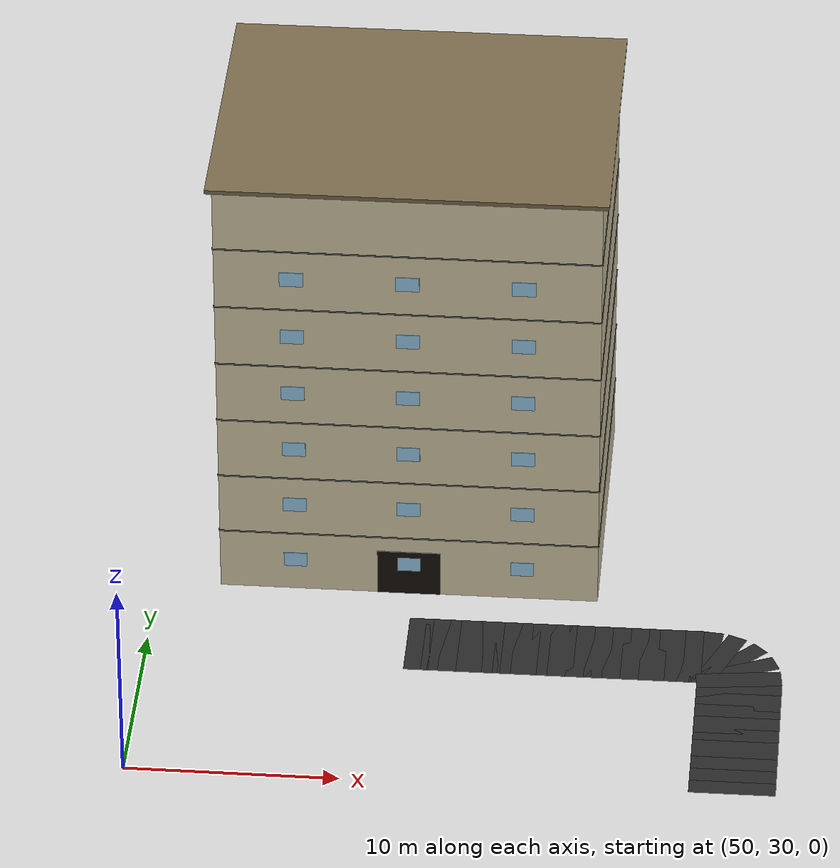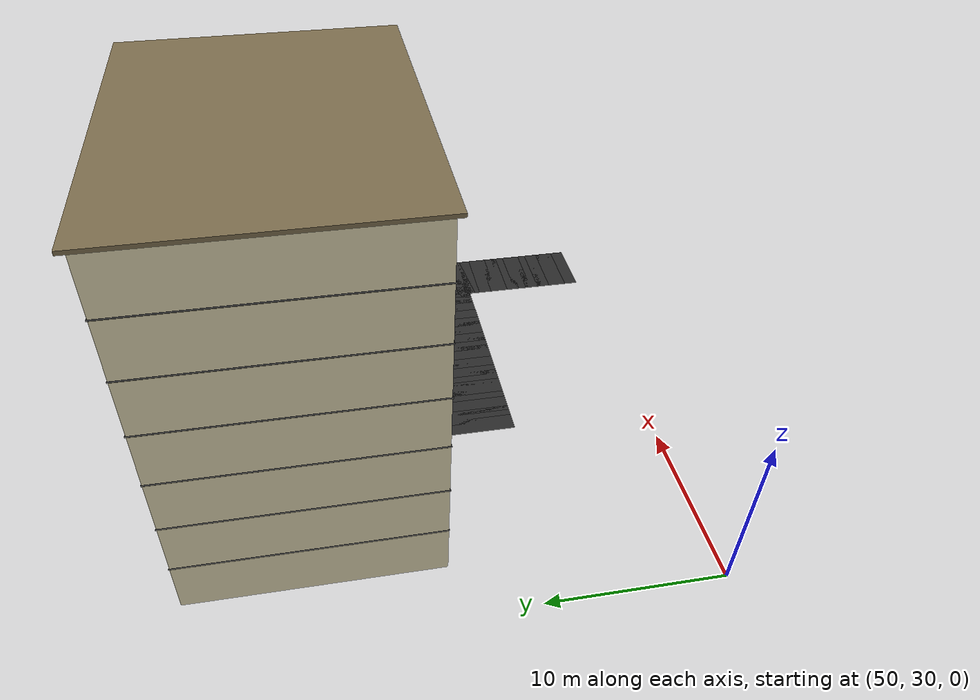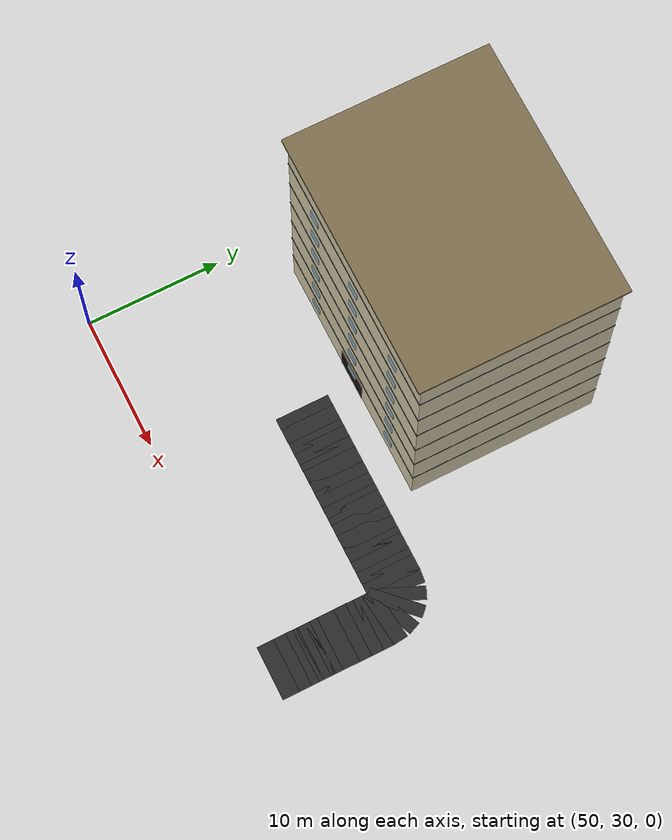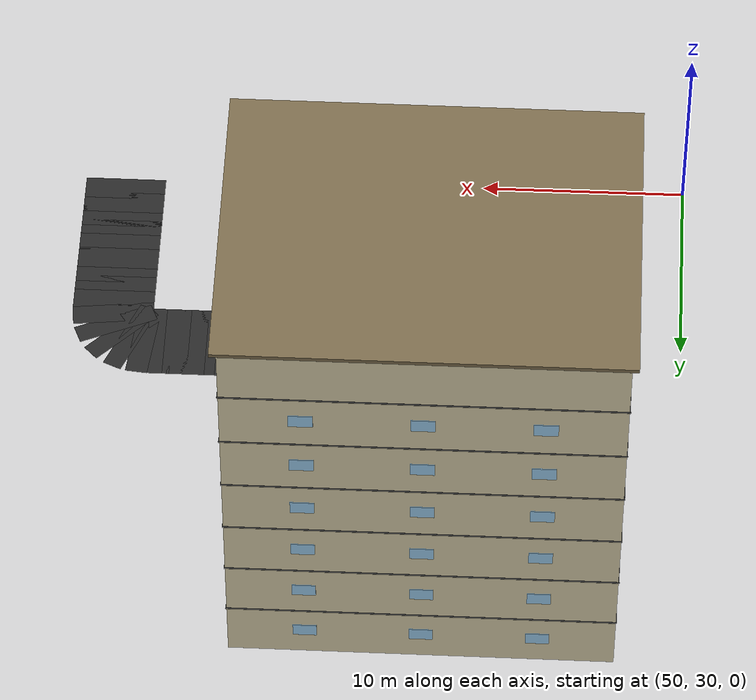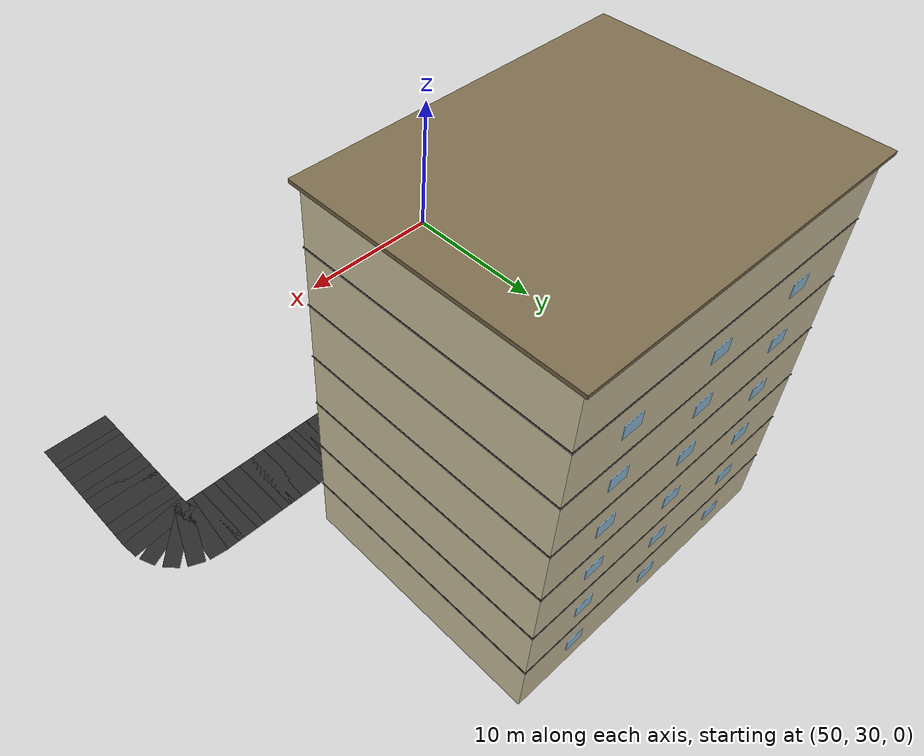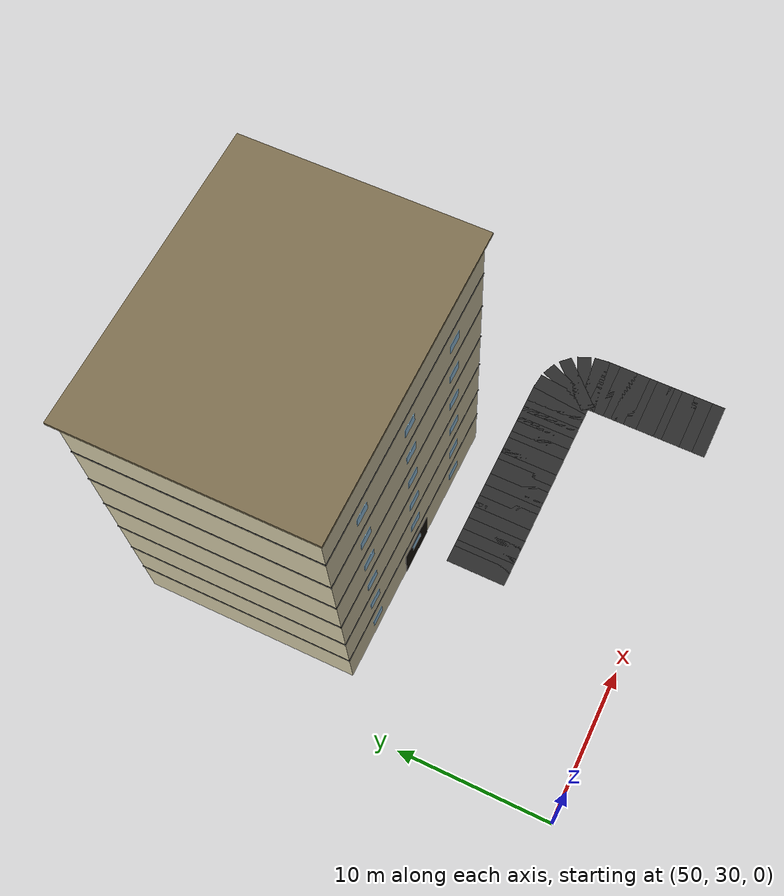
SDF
<sdf version="1.7">
 <world name="campus_delivery">
  <model name="campus_roads">
   <static>true</static>
   <link name="north_campus_loop_0072">
    <pose>78.000 30.850 0.002 0 0 1.570796</pose>
    <visual name="visual">
     <geometry><box><size>1.250 4.000 0.004</size></box></geometry>
     <material><ambient>0.160 0.160 0.160 1.000</ambient><diffuse>0.160 0.160 0.160 1.000</diffuse></material>
    </visual>
   </link>
   <link name="north_campus_loop_0073">
    <pose>78.000 31.750 0.002 0 0 1.570796</pose>
    <visual name="visual">
     <geometry><box><size>1.250 4.000 0.004</size></box></geometry>
     <material><ambient>0.160 0.160 0.160 1.000</ambient><diffuse>0.160 0.160 0.160 1.000</diffuse></material>
    </visual>
   </link>
   <link name="north_campus_loop_0074">
    <pose>78.000 32.650 0.002 0 0 1.570796</pose>
    <visual name="visual">
     <geometry><box><size>1.250 4.000 0.004</size></box></geometry>
     <material><ambient>0.160 0.160 0.160 1.000</ambient><diffuse>0.160 0.160 0.160 1.000</diffuse></material>
    </visual>
   </link>
   <link name="north_campus_loop_0075">
    <pose>78.000 33.550 0.002 0 0 1.570796</pose>
    <visual name="visual">
     <geometry><box><size>1.250 4.000 0.004</size></box></geometry>
     <material><ambient>0.160 0.160 0.160 1.000</ambient><diffuse>0.160 0.160 0.160 1.000</diffuse></material>
    </visual>
   </link>
   <link name="north_campus_loop_0076">
    <pose>78.000 34.450 0.002 0 0 1.570796</pose>
    <visual name="visual">
     <geometry><box><size>1.250 4.000 0.004</size></box></geometry>
     <material><ambient>0.160 0.160 0.160 1.000</ambient><diffuse>0.160 0.160 0.160 1.000</diffuse></material>
    </visual>
   </link>
   <link name="north_campus_loop_0077">
    <pose>78.000 35.350 0.002 0 0 1.570796</pose>
    <visual name="visual">
     <geometry><box><size>1.250 4.000 0.004</size></box></geometry>
     <material><ambient>0.160 0.160 0.160 1.000</ambient><diffuse>0.160 0.160 0.160 1.000</diffuse></material>
    </visual>
   </link>
   <link name="north_campus_loop_0078">
    <pose>78.000 36.250 0.002 0 0 1.570796</pose>
    <visual name="visual">
     <geometry><box><size>1.250 4.000 0.004</size></box></geometry>
     <material><ambient>0.160 0.160 0.160 1.000</ambient><diffuse>0.160 0.160 0.160 1.000</diffuse></material>
    </visual>
   </link>
   <link name="north_campus_loop_0079">
    <pose>78.000 37.150 0.002 0 0 1.570796</pose>
    <visual name="visual">
     <geometry><box><size>1.250 4.000 0.004</size></box></geometry>
     <material><ambient>0.160 0.160 0.160 1.000</ambient><diffuse>0.160 0.160 0.160 1.000</diffuse></material>
    </visual>
   </link>
   <link name="north_campus_loop_0080">
    <pose>78.000 38.050 0.002 0 0 1.570796</pose>
    <visual name="visual">
     <geometry><box><size>1.250 4.000 0.004</size></box></geometry>
     <material><ambient>0.160 0.160 0.160 1.000</ambient><diffuse>0.160 0.160 0.160 1.000</diffuse></material>
    </visual>
   </link>
   <link name="north_campus_loop_0081">
    <pose>77.960 38.860 0.002 0 0 1.681454</pose>
    <visual name="visual">
     <geometry><box><size>1.074 4.000 0.004</size></box></geometry>
     <material><ambient>0.160 0.160 0.160 1.000</ambient><diffuse>0.160 0.160 0.160 1.000</diffuse></material>
    </visual>
   </link>
   <link name="north_campus_loop_0082">
    <pose>77.800 39.500 0.002 0 0 1.975688</pose>
    <visual name="visual">
     <geometry><box><size>0.959 4.000 0.004</size></box></geometry>
     <material><ambient>0.160 0.160 0.160 1.000</ambient><diffuse>0.160 0.160 0.160 1.000</diffuse></material>
    </visual>
   </link>
   <link name="north_campus_loop_0083">
    <pose>77.480 39.980 0.002 0 0 2.356194</pose>
    <visual name="visual">
     <geometry><box><size>0.916 4.000 0.004</size></box></geometry>
     <material><ambient>0.160 0.160 0.160 1.000</ambient><diffuse>0.160 0.160 0.160 1.000</diffuse></material>
    </visual>
   </link>
   <link name="north_campus_loop_0084">
    <pose>77.000 40.300 0.002 0 0 2.736701</pose>
    <visual name="visual">
     <geometry><box><size>0.959 4.000 0.004</size></box></geometry>
     <material><ambient>0.160 0.160 0.160 1.000</ambient><diffuse>0.160 0.160 0.160 1.000</diffuse></material>
    </visual>
   </link>
   <link name="north_campus_loop_0085">
    <pose>76.360 40.460 0.002 0 0 3.030935</pose>
    <visual name="visual">
     <geometry><box><size>1.074 4.000 0.004</size></box></geometry>
     <material><ambient>0.160 0.160 0.160 1.000</ambient><diffuse>0.160 0.160 0.160 1.000</diffuse></material>
    </visual>
   </link>
   <link name="north_campus_loop_0086">
    <pose>75.571 40.500 0.002 0 0 3.141593</pose>
    <visual name="visual">
     <geometry><box><size>1.207 4.000 0.004</size></box></geometry>
     <material><ambient>0.160 0.160 0.160 1.000</ambient><diffuse>0.160 0.160 0.160 1.000</diffuse></material>
    </visual>
   </link>
   <link name="north_campus_loop_0087">
    <pose>74.714 40.500 0.002 0 0 3.141593</pose>
    <visual name="visual">
     <geometry><box><size>1.207 4.000 0.004</size></box></geometry>
     <material><ambient>0.160 0.160 0.160 1.000</ambient><diffuse>0.160 0.160 0.160 1.000</diffuse></material>
    </visual>
   </link>
   <link name="north_campus_loop_0088">
    <pose>73.857 40.500 0.002 0 0 3.141593</pose>
    <visual name="visual">
     <geometry><box><size>1.207 4.000 0.004</size></box></geometry>
     <material><ambient>0.160 0.160 0.160 1.000</ambient><diffuse>0.160 0.160 0.160 1.000</diffuse></material>
    </visual>
   </link>
   <link name="north_campus_loop_0089">
    <pose>73.000 40.500 0.002 0 0 3.141593</pose>
    <visual name="visual">
     <geometry><box><size>1.207 4.000 0.004</size></box></geometry>
     <material><ambient>0.160 0.160 0.160 1.000</ambient><diffuse>0.160 0.160 0.160 1.000</diffuse></material>
    </visual>
   </link>
   <link name="north_campus_loop_0090">
    <pose>72.143 40.500 0.002 0 0 3.141593</pose>
    <visual name="visual">
     <geometry><box><size>1.207 4.000 0.004</size></box></geometry>
     <material><ambient>0.160 0.160 0.160 1.000</ambient><diffuse>0.160 0.160 0.160 1.000</diffuse></material>
    </visual>
   </link>
   <link name="north_campus_loop_0091">
    <pose>71.286 40.500 0.002 0 0 3.141593</pose>
    <visual name="visual">
     <geometry><box><size>1.207 4.000 0.004</size></box></geometry>
     <material><ambient>0.160 0.160 0.160 1.000</ambient><diffuse>0.160 0.160 0.160 1.000</diffuse></material>
    </visual>
   </link>
   <link name="north_campus_loop_0092">
    <pose>70.429 40.500 0.002 0 0 3.141593</pose>
    <visual name="visual">
     <geometry><box><size>1.207 4.000 0.004</size></box></geometry>
     <material><ambient>0.160 0.160 0.160 1.000</ambient><diffuse>0.160 0.160 0.160 1.000</diffuse></material>
    </visual>
   </link>
   <link name="north_campus_loop_0093">
    <pose>69.571 40.500 0.002 0 0 3.141593</pose>
    <visual name="visual">
     <geometry><box><size>1.207 4.000 0.004</size></box></geometry>
     <material><ambient>0.160 0.160 0.160 1.000</ambient><diffuse>0.160 0.160 0.160 1.000</diffuse></material>
    </visual>
   </link>
   <link name="north_campus_loop_0094">
    <pose>68.714 40.500 0.002 0 0 3.141593</pose>
    <visual name="visual">
     <geometry><box><size>1.207 4.000 0.004</size></box></geometry>
     <material><ambient>0.160 0.160 0.160 1.000</ambient><diffuse>0.160 0.160 0.160 1.000</diffuse></material>
    </visual>
   </link>
   <link name="north_campus_loop_0095">
    <pose>67.857 40.500 0.002 0 0 3.141593</pose>
    <visual name="visual">
     <geometry><box><size>1.207 4.000 0.004</size></box></geometry>
     <material><ambient>0.160 0.160 0.160 1.000</ambient><diffuse>0.160 0.160 0.160 1.000</diffuse></material>
    </visual>
   </link>
   <link name="north_campus_loop_0096">
    <pose>67.000 40.500 0.002 0 0 3.141593</pose>
    <visual name="visual">
     <geometry><box><size>1.207 4.000 0.004</size></box></geometry>
     <material><ambient>0.160 0.160 0.160 1.000</ambient><diffuse>0.160 0.160 0.160 1.000</diffuse></material>
    </visual>
   </link>
   <link name="north_campus_loop_0097">
    <pose>66.143 40.500 0.002 0 0 3.141593</pose>
    <visual name="visual">
     <geometry><box><size>1.207 4.000 0.004</size></box></geometry>
     <material><ambient>0.160 0.160 0.160 1.000</ambient><diffuse>0.160 0.160 0.160 1.000</diffuse></material>
    </visual>
   </link>
   <link name="north_campus_loop_0098">
    <pose>65.286 40.500 0.002 0 0 3.141593</pose>
    <visual name="visual">
     <geometry><box><size>1.207 4.000 0.004</size></box></geometry>
     <material><ambient>0.160 0.160 0.160 1.000</ambient><diffuse>0.160 0.160 0.160 1.000</diffuse></material>
    </visual>
   </link>
   <link name="north_campus_loop_0099">
    <pose>64.429 40.500 0.002 0 0 3.141593</pose>
    <visual name="visual">
     <geometry><box><size>1.207 4.000 0.004</size></box></geometry>
     <material><ambient>0.160 0.160 0.160 1.000</ambient><diffuse>0.160 0.160 0.160 1.000</diffuse></material>
    </visual>
   </link>
   <link name="north_campus_loop_0100">
    <pose>63.600 40.500 0.002 0 0 3.141593</pose>
    <visual name="visual">
     <geometry><box><size>1.150 4.000 0.004</size></box></geometry>
     <material><ambient>0.160 0.160 0.160 1.000</ambient><diffuse>0.160 0.160 0.160 1.000</diffuse></material>
    </visual>
   </link>
   <link name="north_campus_loop_0101">
    <pose>62.800 40.500 0.002 0 0 -3.141593</pose>
    <visual name="visual">
     <geometry><box><size>1.150 4.000 0.004</size></box></geometry>
     <material><ambient>0.160 0.160 0.160 1.000</ambient><diffuse>0.160 0.160 0.160 1.000</diffuse></material>
    </visual>
   </link>
  </model>
  <model name="library">
   <static>true</static>
   <pose>62.000 51.500 0 0 0 0</pose>
   <link name="body">
    <visual name="body">
     <pose>0 0 11.200 0 0 0</pose>
     <geometry><box><size>18.000 14.000 22.400</size></box></geometry>
     <material><ambient>0.860 0.820 0.680 1.000</ambient><diffuse>0.860 0.820 0.680 1.000</diffuse></material>
    </visual>
    <collision name="body_collision">
     <pose>0 0 11.200 0 0 0</pose>
     <geometry><box><size>18.000 14.000 22.400</size></box></geometry>
    </collision>
    <visual name="roof">
     <pose>0 0 22.500 0 0 0</pose>
     <geometry><box><size>18.600 14.600 0.200</size></box></geometry>
     <material><ambient>0.480 0.420 0.300 1.000</ambient><diffuse>0.480 0.420 0.300 1.000</diffuse></material>
    </visual>
    <visual name="floor_sep_n_1">
     <pose>0 7.018 3.200 0 0 0</pose>
     <geometry><box><size>18.100 0.035 0.060</size></box></geometry>
     <material><ambient>0.080 0.080 0.080 1.000</ambient><diffuse>0.080 0.080 0.080 1.000</diffuse></material>
    </visual>
    <visual name="floor_sep_s_1">
     <pose>0 -7.018 3.200 0 0 0</pose>
     <geometry><box><size>18.100 0.035 0.060</size></box></geometry>
     <material><ambient>0.080 0.080 0.080 1.000</ambient><diffuse>0.080 0.080 0.080 1.000</diffuse></material>
    </visual>
    <visual name="floor_sep_e_1">
     <pose>9.018 0 3.200 0 0 0</pose>
     <geometry><box><size>0.035 14.100 0.060</size></box></geometry>
     <material><ambient>0.080 0.080 0.080 1.000</ambient><diffuse>0.080 0.080 0.080 1.000</diffuse></material>
    </visual>
    <visual name="floor_sep_w_1">
     <pose>-9.018 0 3.200 0 0 0</pose>
     <geometry><box><size>0.035 14.100 0.060</size></box></geometry>
     <material><ambient>0.080 0.080 0.080 1.000</ambient><diffuse>0.080 0.080 0.080 1.000</diffuse></material>
    </visual>
    <visual name="floor_sep_n_2">
     <pose>0 7.018 6.400 0 0 0</pose>
     <geometry><box><size>18.100 0.035 0.060</size></box></geometry>
     <material><ambient>0.080 0.080 0.080 1.000</ambient><diffuse>0.080 0.080 0.080 1.000</diffuse></material>
    </visual>
    <visual name="floor_sep_s_2">
     <pose>0 -7.018 6.400 0 0 0</pose>
     <geometry><box><size>18.100 0.035 0.060</size></box></geometry>
     <material><ambient>0.080 0.080 0.080 1.000</ambient><diffuse>0.080 0.080 0.080 1.000</diffuse></material>
    </visual>
    <visual name="floor_sep_e_2">
     <pose>9.018 0 6.400 0 0 0</pose>
     <geometry><box><size>0.035 14.100 0.060</size></box></geometry>
     <material><ambient>0.080 0.080 0.080 1.000</ambient><diffuse>0.080 0.080 0.080 1.000</diffuse></material>
    </visual>
    <visual name="floor_sep_w_2">
     <pose>-9.018 0 6.400 0 0 0</pose>
     <geometry><box><size>0.035 14.100 0.060</size></box></geometry>
     <material><ambient>0.080 0.080 0.080 1.000</ambient><diffuse>0.080 0.080 0.080 1.000</diffuse></material>
    </visual>
    <visual name="floor_sep_n_3">
     <pose>0 7.018 9.600 0 0 0</pose>
     <geometry><box><size>18.100 0.035 0.060</size></box></geometry>
     <material><ambient>0.080 0.080 0.080 1.000</ambient><diffuse>0.080 0.080 0.080 1.000</diffuse></material>
    </visual>
    <visual name="floor_sep_s_3">
     <pose>0 -7.018 9.600 0 0 0</pose>
     <geometry><box><size>18.100 0.035 0.060</size></box></geometry>
     <material><ambient>0.080 0.080 0.080 1.000</ambient><diffuse>0.080 0.080 0.080 1.000</diffuse></material>
    </visual>
    <visual name="floor_sep_e_3">
     <pose>9.018 0 9.600 0 0 0</pose>
     <geometry><box><size>0.035 14.100 0.060</size></box></geometry>
     <material><ambient>0.080 0.080 0.080 1.000</ambient><diffuse>0.080 0.080 0.080 1.000</diffuse></material>
    </visual>
    <visual name="floor_sep_w_3">
     <pose>-9.018 0 9.600 0 0 0</pose>
     <geometry><box><size>0.035 14.100 0.060</size></box></geometry>
     <material><ambient>0.080 0.080 0.080 1.000</ambient><diffuse>0.080 0.080 0.080 1.000</diffuse></material>
    </visual>
    <visual name="floor_sep_n_4">
     <pose>0 7.018 12.800 0 0 0</pose>
     <geometry><box><size>18.100 0.035 0.060</size></box></geometry>
     <material><ambient>0.080 0.080 0.080 1.000</ambient><diffuse>0.080 0.080 0.080 1.000</diffuse></material>
    </visual>
    <visual name="floor_sep_s_4">
     <pose>0 -7.018 12.800 0 0 0</pose>
     <geometry><box><size>18.100 0.035 0.060</size></box></geometry>
     <material><ambient>0.080 0.080 0.080 1.000</ambient><diffuse>0.080 0.080 0.080 1.000</diffuse></material>
    </visual>
    <visual name="floor_sep_e_4">
     <pose>9.018 0 12.800 0 0 0</pose>
     <geometry><box><size>0.035 14.100 0.060</size></box></geometry>
     <material><ambient>0.080 0.080 0.080 1.000</ambient><diffuse>0.080 0.080 0.080 1.000</diffuse></material>
    </visual>
    <visual name="floor_sep_w_4">
     <pose>-9.018 0 12.800 0 0 0</pose>
     <geometry><box><size>0.035 14.100 0.060</size></box></geometry>
     <material><ambient>0.080 0.080 0.080 1.000</ambient><diffuse>0.080 0.080 0.080 1.000</diffuse></material>
    </visual>
    <visual name="floor_sep_n_5">
     <pose>0 7.018 16.000 0 0 0</pose>
     <geometry><box><size>18.100 0.035 0.060</size></box></geometry>
     <material><ambient>0.080 0.080 0.080 1.000</ambient><diffuse>0.080 0.080 0.080 1.000</diffuse></material>
    </visual>
    <visual name="floor_sep_s_5">
     <pose>0 -7.018 16.000 0 0 0</pose>
     <geometry><box><size>18.100 0.035 0.060</size></box></geometry>
     <material><ambient>0.080 0.080 0.080 1.000</ambient><diffuse>0.080 0.080 0.080 1.000</diffuse></material>
    </visual>
    <visual name="floor_sep_e_5">
     <pose>9.018 0 16.000 0 0 0</pose>
     <geometry><box><size>0.035 14.100 0.060</size></box></geometry>
     <material><ambient>0.080 0.080 0.080 1.000</ambient><diffuse>0.080 0.080 0.080 1.000</diffuse></material>
    </visual>
    <visual name="floor_sep_w_5">
     <pose>-9.018 0 16.000 0 0 0</pose>
     <geometry><box><size>0.035 14.100 0.060</size></box></geometry>
     <material><ambient>0.080 0.080 0.080 1.000</ambient><diffuse>0.080 0.080 0.080 1.000</diffuse></material>
    </visual>
    <visual name="floor_sep_n_6">
     <pose>0 7.018 19.200 0 0 0</pose>
     <geometry><box><size>18.100 0.035 0.060</size></box></geometry>
     <material><ambient>0.080 0.080 0.080 1.000</ambient><diffuse>0.080 0.080 0.080 1.000</diffuse></material>
    </visual>
    <visual name="floor_sep_s_6">
     <pose>0 -7.018 19.200 0 0 0</pose>
     <geometry><box><size>18.100 0.035 0.060</size></box></geometry>
     <material><ambient>0.080 0.080 0.080 1.000</ambient><diffuse>0.080 0.080 0.080 1.000</diffuse></material>
    </visual>
    <visual name="floor_sep_e_6">
     <pose>9.018 0 19.200 0 0 0</pose>
     <geometry><box><size>0.035 14.100 0.060</size></box></geometry>
     <material><ambient>0.080 0.080 0.080 1.000</ambient><diffuse>0.080 0.080 0.080 1.000</diffuse></material>
    </visual>
    <visual name="floor_sep_w_6">
     <pose>-9.018 0 19.200 0 0 0</pose>
     <geometry><box><size>0.035 14.100 0.060</size></box></geometry>
     <material><ambient>0.080 0.080 0.080 1.000</ambient><diffuse>0.080 0.080 0.080 1.000</diffuse></material>
    </visual>
    <visual name="front_door">
     <pose>0 -7.012 1.2 0 0 0</pose>
     <geometry><box><size>3.000 0.050 2.400</size></box></geometry>
     <material><ambient>0.080 0.060 0.040 1.000</ambient><diffuse>0.080 0.060 0.040 1.000</diffuse></material>
    </visual>
    <visual name="win_n_1_-5.4">
     <pose>-5.400 7.020 1.700 0 0 0</pose>
     <geometry><box><size>1.100 0.035 0.750</size></box></geometry>
     <material><ambient>0.620 0.820 0.950 1.000</ambient><diffuse>0.620 0.820 0.950 1.000</diffuse></material>
    </visual>
    <visual name="win_s_1_-5.4">
     <pose>-5.400 -7.020 1.700 0 0 0</pose>
     <geometry><box><size>1.100 0.035 0.750</size></box></geometry>
     <material><ambient>0.620 0.820 0.950 1.000</ambient><diffuse>0.620 0.820 0.950 1.000</diffuse></material>
    </visual>
    <visual name="win_n_1_0.0">
     <pose>0.000 7.020 1.700 0 0 0</pose>
     <geometry><box><size>1.100 0.035 0.750</size></box></geometry>
     <material><ambient>0.620 0.820 0.950 1.000</ambient><diffuse>0.620 0.820 0.950 1.000</diffuse></material>
    </visual>
    <visual name="win_s_1_0.0">
     <pose>0.000 -7.020 1.700 0 0 0</pose>
     <geometry><box><size>1.100 0.035 0.750</size></box></geometry>
     <material><ambient>0.620 0.820 0.950 1.000</ambient><diffuse>0.620 0.820 0.950 1.000</diffuse></material>
    </visual>
    <visual name="win_n_1_5.4">
     <pose>5.400 7.020 1.700 0 0 0</pose>
     <geometry><box><size>1.100 0.035 0.750</size></box></geometry>
     <material><ambient>0.620 0.820 0.950 1.000</ambient><diffuse>0.620 0.820 0.950 1.000</diffuse></material>
    </visual>
    <visual name="win_s_1_5.4">
     <pose>5.400 -7.020 1.700 0 0 0</pose>
     <geometry><box><size>1.100 0.035 0.750</size></box></geometry>
     <material><ambient>0.620 0.820 0.950 1.000</ambient><diffuse>0.620 0.820 0.950 1.000</diffuse></material>
    </visual>
    <visual name="win_n_2_-5.4">
     <pose>-5.400 7.020 4.900 0 0 0</pose>
     <geometry><box><size>1.100 0.035 0.750</size></box></geometry>
     <material><ambient>0.620 0.820 0.950 1.000</ambient><diffuse>0.620 0.820 0.950 1.000</diffuse></material>
    </visual>
    <visual name="win_s_2_-5.4">
     <pose>-5.400 -7.020 4.900 0 0 0</pose>
     <geometry><box><size>1.100 0.035 0.750</size></box></geometry>
     <material><ambient>0.620 0.820 0.950 1.000</ambient><diffuse>0.620 0.820 0.950 1.000</diffuse></material>
    </visual>
    <visual name="win_n_2_0.0">
     <pose>0.000 7.020 4.900 0 0 0</pose>
     <geometry><box><size>1.100 0.035 0.750</size></box></geometry>
     <material><ambient>0.620 0.820 0.950 1.000</ambient><diffuse>0.620 0.820 0.950 1.000</diffuse></material>
    </visual>
    <visual name="win_s_2_0.0">
     <pose>0.000 -7.020 4.900 0 0 0</pose>
     <geometry><box><size>1.100 0.035 0.750</size></box></geometry>
     <material><ambient>0.620 0.820 0.950 1.000</ambient><diffuse>0.620 0.820 0.950 1.000</diffuse></material>
    </visual>
    <visual name="win_n_2_5.4">
     <pose>5.400 7.020 4.900 0 0 0</pose>
     <geometry><box><size>1.100 0.035 0.750</size></box></geometry>
     <material><ambient>0.620 0.820 0.950 1.000</ambient><diffuse>0.620 0.820 0.950 1.000</diffuse></material>
    </visual>
    <visual name="win_s_2_5.4">
     <pose>5.400 -7.020 4.900 0 0 0</pose>
     <geometry><box><size>1.100 0.035 0.750</size></box></geometry>
     <material><ambient>0.620 0.820 0.950 1.000</ambient><diffuse>0.620 0.820 0.950 1.000</diffuse></material>
    </visual>
    <visual name="win_n_3_-5.4">
     <pose>-5.400 7.020 8.100 0 0 0</pose>
     <geometry><box><size>1.100 0.035 0.750</size></box></geometry>
     <material><ambient>0.620 0.820 0.950 1.000</ambient><diffuse>0.620 0.820 0.950 1.000</diffuse></material>
    </visual>
    <visual name="win_s_3_-5.4">
     <pose>-5.400 -7.020 8.100 0 0 0</pose>
     <geometry><box><size>1.100 0.035 0.750</size></box></geometry>
     <material><ambient>0.620 0.820 0.950 1.000</ambient><diffuse>0.620 0.820 0.950 1.000</diffuse></material>
    </visual>
    <visual name="win_n_3_0.0">
     <pose>0.000 7.020 8.100 0 0 0</pose>
     <geometry><box><size>1.100 0.035 0.750</size></box></geometry>
     <material><ambient>0.620 0.820 0.950 1.000</ambient><diffuse>0.620 0.820 0.950 1.000</diffuse></material>
    </visual>
    <visual name="win_s_3_0.0">
     <pose>0.000 -7.020 8.100 0 0 0</pose>
     <geometry><box><size>1.100 0.035 0.750</size></box></geometry>
     <material><ambient>0.620 0.820 0.950 1.000</ambient><diffuse>0.620 0.820 0.950 1.000</diffuse></material>
    </visual>
    <visual name="win_n_3_5.4">
     <pose>5.400 7.020 8.100 0 0 0</pose>
     <geometry><box><size>1.100 0.035 0.750</size></box></geometry>
     <material><ambient>0.620 0.820 0.950 1.000</ambient><diffuse>0.620 0.820 0.950 1.000</diffuse></material>
    </visual>
    <visual name="win_s_3_5.4">
     <pose>5.400 -7.020 8.100 0 0 0</pose>
     <geometry><box><size>1.100 0.035 0.750</size></box></geometry>
     <material><ambient>0.620 0.820 0.950 1.000</ambient><diffuse>0.620 0.820 0.950 1.000</diffuse></material>
    </visual>
    <visual name="win_n_4_-5.4">
     <pose>-5.400 7.020 11.300 0 0 0</pose>
     <geometry><box><size>1.100 0.035 0.750</size></box></geometry>
     <material><ambient>0.620 0.820 0.950 1.000</ambient><diffuse>0.620 0.820 0.950 1.000</diffuse></material>
    </visual>
    <visual name="win_s_4_-5.4">
     <pose>-5.400 -7.020 11.300 0 0 0</pose>
     <geometry><box><size>1.100 0.035 0.750</size></box></geometry>
     <material><ambient>0.620 0.820 0.950 1.000</ambient><diffuse>0.620 0.820 0.950 1.000</diffuse></material>
    </visual>
    <visual name="win_n_4_0.0">
     <pose>0.000 7.020 11.300 0 0 0</pose>
     <geometry><box><size>1.100 0.035 0.750</size></box></geometry>
     <material><ambient>0.620 0.820 0.950 1.000</ambient><diffuse>0.620 0.820 0.950 1.000</diffuse></material>
    </visual>
    <visual name="win_s_4_0.0">
     <pose>0.000 -7.020 11.300 0 0 0</pose>
     <geometry><box><size>1.100 0.035 0.750</size></box></geometry>
     <material><ambient>0.620 0.820 0.950 1.000</ambient><diffuse>0.620 0.820 0.950 1.000</diffuse></material>
    </visual>
    <visual name="win_n_4_5.4">
     <pose>5.400 7.020 11.300 0 0 0</pose>
     <geometry><box><size>1.100 0.035 0.750</size></box></geometry>
     <material><ambient>0.620 0.820 0.950 1.000</ambient><diffuse>0.620 0.820 0.950 1.000</diffuse></material>
    </visual>
    <visual name="win_s_4_5.4">
     <pose>5.400 -7.020 11.300 0 0 0</pose>
     <geometry><box><size>1.100 0.035 0.750</size></box></geometry>
     <material><ambient>0.620 0.820 0.950 1.000</ambient><diffuse>0.620 0.820 0.950 1.000</diffuse></material>
    </visual>
    <visual name="win_n_5_-5.4">
     <pose>-5.400 7.020 14.500 0 0 0</pose>
     <geometry><box><size>1.100 0.035 0.750</size></box></geometry>
     <material><ambient>0.620 0.820 0.950 1.000</ambient><diffuse>0.620 0.820 0.950 1.000</diffuse></material>
    </visual>
    <visual name="win_s_5_-5.4">
     <pose>-5.400 -7.020 14.500 0 0 0</pose>
     <geometry><box><size>1.100 0.035 0.750</size></box></geometry>
     <material><ambient>0.620 0.820 0.950 1.000</ambient><diffuse>0.620 0.820 0.950 1.000</diffuse></material>
    </visual>
    <visual name="win_n_5_0.0">
     <pose>0.000 7.020 14.500 0 0 0</pose>
     <geometry><box><size>1.100 0.035 0.750</size></box></geometry>
     <material><ambient>0.620 0.820 0.950 1.000</ambient><diffuse>0.620 0.820 0.950 1.000</diffuse></material>
    </visual>
    <visual name="win_s_5_0.0">
     <pose>0.000 -7.020 14.500 0 0 0</pose>
     <geometry><box><size>1.100 0.035 0.750</size></box></geometry>
     <material><ambient>0.620 0.820 0.950 1.000</ambient><diffuse>0.620 0.820 0.950 1.000</diffuse></material>
    </visual>
    <visual name="win_n_5_5.4">
     <pose>5.400 7.020 14.500 0 0 0</pose>
     <geometry><box><size>1.100 0.035 0.750</size></box></geometry>
     <material><ambient>0.620 0.820 0.950 1.000</ambient><diffuse>0.620 0.820 0.950 1.000</diffuse></material>
    </visual>
    <visual name="win_s_5_5.4">
     <pose>5.400 -7.020 14.500 0 0 0</pose>
     <geometry><box><size>1.100 0.035 0.750</size></box></geometry>
     <material><ambient>0.620 0.820 0.950 1.000</ambient><diffuse>0.620 0.820 0.950 1.000</diffuse></material>
    </visual>
    <visual name="win_n_6_-5.4">
     <pose>-5.400 7.020 17.700 0 0 0</pose>
     <geometry><box><size>1.100 0.035 0.750</size></box></geometry>
     <material><ambient>0.620 0.820 0.950 1.000</ambient><diffuse>0.620 0.820 0.950 1.000</diffuse></material>
    </visual>
    <visual name="win_s_6_-5.4">
     <pose>-5.400 -7.020 17.700 0 0 0</pose>
     <geometry><box><size>1.100 0.035 0.750</size></box></geometry>
     <material><ambient>0.620 0.820 0.950 1.000</ambient><diffuse>0.620 0.820 0.950 1.000</diffuse></material>
    </visual>
    <visual name="win_n_6_0.0">
     <pose>0.000 7.020 17.700 0 0 0</pose>
     <geometry><box><size>1.100 0.035 0.750</size></box></geometry>
     <material><ambient>0.620 0.820 0.950 1.000</ambient><diffuse>0.620 0.820 0.950 1.000</diffuse></material>
    </visual>
    <visual name="win_s_6_0.0">
     <pose>0.000 -7.020 17.700 0 0 0</pose>
     <geometry><box><size>1.100 0.035 0.750</size></box></geometry>
     <material><ambient>0.620 0.820 0.950 1.000</ambient><diffuse>0.620 0.820 0.950 1.000</diffuse></material>
    </visual>
    <visual name="win_n_6_5.4">
     <pose>5.400 7.020 17.700 0 0 0</pose>
     <geometry><box><size>1.100 0.035 0.750</size></box></geometry>
     <material><ambient>0.620 0.820 0.950 1.000</ambient><diffuse>0.620 0.820 0.950 1.000</diffuse></material>
    </visual>
    <visual name="win_s_6_5.4">
     <pose>5.400 -7.020 17.700 0 0 0</pose>
     <geometry><box><size>1.100 0.035 0.750</size></box></geometry>
     <material><ambient>0.620 0.820 0.950 1.000</ambient><diffuse>0.620 0.820 0.950 1.000</diffuse></material>
    </visual>
   </link>
  </model>
 </world>
</sdf>
